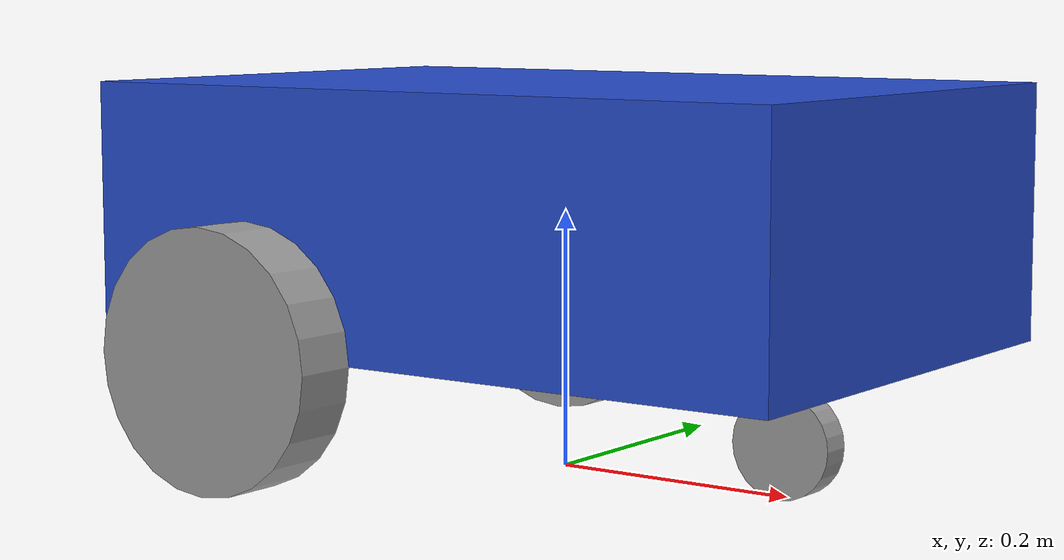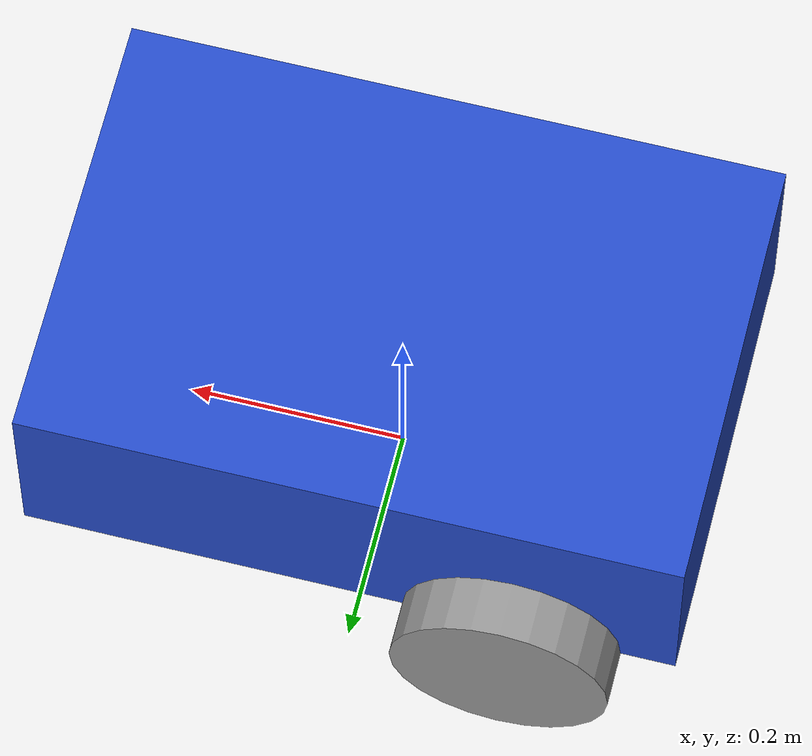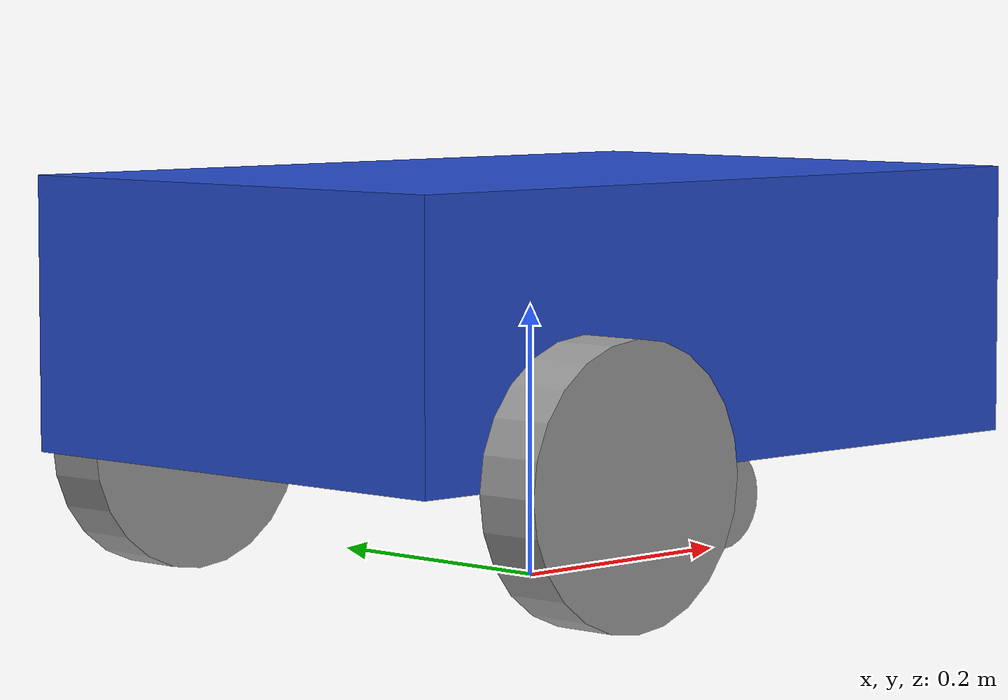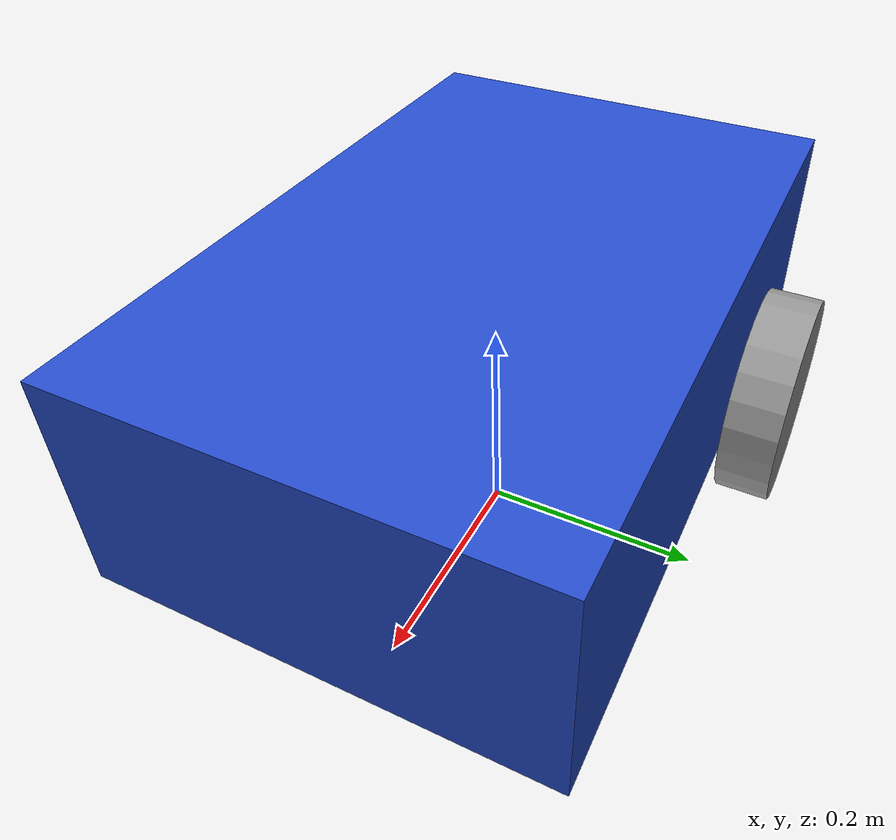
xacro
<?xml version="1.0"?>
<robot xmlns:xacro="http://www.ros.org/wiki/xacro">

    <!-- Defining some variables -->
    <xacro:property name="base_length" value="0.6"/>
    <xacro:property name="base_width" value="0.4"/>
    <xacro:property name="base_height" value="0.2"/>
    <xacro:property name="wheel_radius" value="0.1"/>
    <xacro:property name="wheel_width" value="0.05"/>
    <xacro:property name="caster_wheel_radius" value="${wheel_radius / 2.0}"/>

    <!-- FIXED -->
    <xacro:property name="caster_wheel_support_radius" value="0.04"/>
    <xacro:property name="caster_wheel_real_radius" value="${caster_wheel_radius * 0.8}"/>
    <xacro:property name="caster_wheel_support_length" value="${wheel_radius - 2.0 * caster_wheel_real_radius}"/>
    <xacro:property name="caster_wheel_width" value="${wheel_width * 0.5}"/>
    <!-- ============= Defining the links of the robot ============== -->
    <link name="base_link">
        <visual>
            <geometry>
                <box size="${base_length} ${base_width} ${base_height}" />
            </geometry>
            <origin xyz="0 0 ${base_height / 2.0}" rpy="0 0 0"/>
            <material name="blue"/>
        </visual>
        <collision>
            <geometry>
                <box size="${base_length} ${base_width} ${base_height}" />
            </geometry>
            <origin xyz="0 0 ${base_height / 2.0}" rpy="0 0 0"/>
        </collision>
        <!-- FIX: l→x, w→y, h→z; xyz/rpy renamed to o_xyz/o_rpy -->
        <xacro:box_inertia m="5.0" x="${base_length}" y="${base_width}" z="${base_height}"
                           o_xyz="0 0 ${base_height / 2.0}" o_rpy="0 0 0"/>
    </link>

    <xacro:macro name="wheel_link" params="prefix">
        <link name="${prefix}_wheel_link">
            <visual>
                <geometry>
                    <cylinder radius="${wheel_radius}" length="${wheel_width}" />
                </geometry>
                <origin xyz="0 0 0" rpy="${pi / 2.0} 0 0"/>
                <material name="gray"/>
            </visual>
            <collision>
                <geometry>
                    <cylinder radius="${wheel_radius}" length="${wheel_width}" />
                </geometry>
                <origin xyz="0 0 0" rpy="${pi / 2.0} 0 0"/>
            </collision>
            <!-- FIX: h→l; xyz/rpy renamed to o_xyz/o_rpy -->
            <xacro:cylinder_inertia m="1.0" r="${wheel_radius}" l="${wheel_width}"
                                    o_xyz="0 0 0" o_rpy="${pi / 2.0} 0 0"/>
        </link>
    </xacro:macro>

    <xacro:wheel_link prefix="right"/>
    <xacro:wheel_link prefix="left"/>

    <link name="caster_wheel_link_support">
        <visual>
            <geometry>
                <cylinder radius="${caster_wheel_support_radius}" length="${caster_wheel_support_length}" />
            </geometry>
            <origin xyz="0 0 0" rpy="0 0 0"/>
            <material name="gray"/>
        </visual>
        <collision>
            <geometry>
                <cylinder radius="${caster_wheel_support_radius}" length="${caster_wheel_support_length}" />
            </geometry>
            <origin xyz="0 0 0" rpy="0 0 0"/>
        </collision>
        <!-- FIX: h→l; xyz/rpy renamed to o_xyz/o_rpy -->
        <xacro:cylinder_inertia m="0.05" r="${caster_wheel_support_radius}" l="${caster_wheel_support_length}"
                                o_xyz="0 0 0" o_rpy="0 0 0"/>
    </link>

    <link name="caster_wheel_real_link">
        <visual>
            <geometry>
                <cylinder radius="${caster_wheel_real_radius}" length="${caster_wheel_width}" />
            </geometry>
            <origin xyz="0 0 0" rpy="0 0 0"/>
            <material name="gray"/>
        </visual>
        <collision>
            <geometry>
                <cylinder radius="${caster_wheel_real_radius}" length="${caster_wheel_width}" />
            </geometry>
            <origin xyz="0 0 0" rpy="0 0 0"/>
        </collision>
        <!-- FIX: h→l; xyz/rpy renamed to o_xyz/o_rpy -->
        <xacro:cylinder_inertia m="0.1" r="${caster_wheel_real_radius}" l="${caster_wheel_width}"
                                o_xyz="0 0 0" o_rpy="0 0 0"/>
    </link>

    <link name="base_footprint" />

    <!-- ============= Defining the joints of the robot ============== -->
    <joint name="base_left_wheel_joint" type="continuous">
        <parent link="base_link"/>
        <child link="left_wheel_link"/>
        <origin xyz="${-base_length / 4.0} ${base_width / 2.0 + wheel_width / 2.0} 0" rpy="0 0 0"/>
        <axis xyz="0 1 0"/>
    </joint>

    <joint name="base_right_wheel_joint" type="continuous">
        <parent link="base_link"/>
        <child link="right_wheel_link"/>
        <origin xyz="${-base_length / 4.0} ${-base_width / 2.0 - wheel_width / 2.0} 0" rpy="0 0 0"/>
        <axis xyz="0 1 0"/>
    </joint>

    <joint name="base_caster_wheel_support_joint" type="fixed">
        <parent link="base_link"/>
        <child link="caster_wheel_link_support"/>
        <origin xyz="${base_length / 3.0} 0 ${-caster_wheel_support_length / 2.0}" rpy="0 0 0"/>
    </joint>

    <joint name="base_caster_wheel_real_joint" type="fixed">
        <parent link="caster_wheel_link_support"/>
        <child link="caster_wheel_real_link"/>
        <origin xyz="0 0 ${-caster_wheel_support_length / 2.0 - caster_wheel_real_radius}" rpy="1.57 1.57 0"/>
    </joint>

    <joint name="base_joint" type="fixed">
        <parent link="base_footprint"/>
        <child link="base_link"/>
        <origin xyz="0 0 ${wheel_radius}" rpy="0 0 0"/>
    </joint>

</robot>
